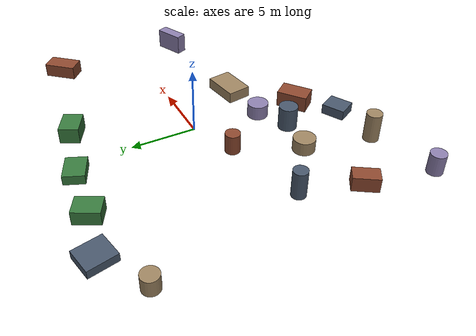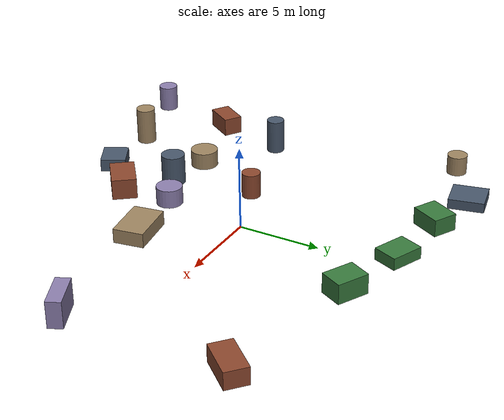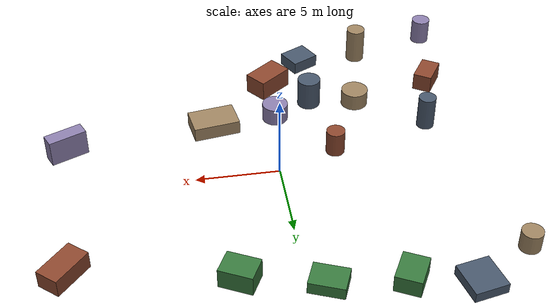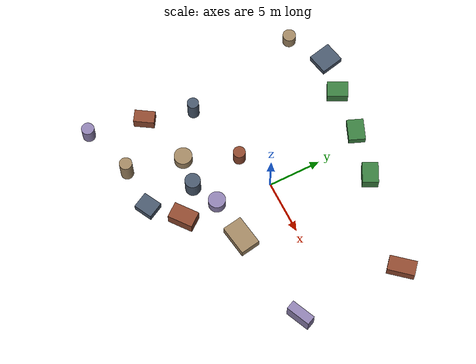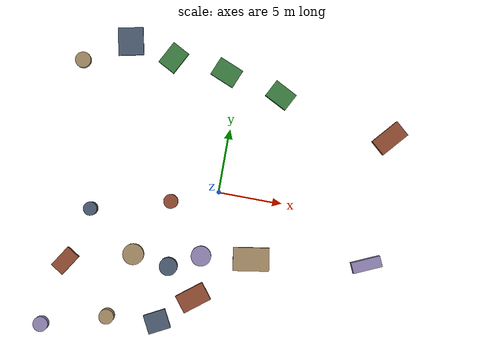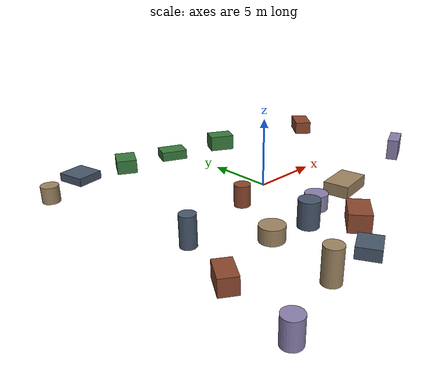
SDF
<sdf version="1.10">
 <world name="robotx_task1_uav_view">
  <gravity>0 0 -9.81</gravity>
  <physics name="physics" type="ode">
   <max_step_size>0.002</max_step_size>
   <real_time_factor>1.0</real_time_factor>
  </physics>
  <scene>
   <ambient>0.14 0.14 0.14 1.0</ambient>
   <background>0.32 0.32 0.38 1.0</background>
   <shadows>true</shadows>
   <grid>false</grid>
  </scene>
  <light name="sun" type="directional">
   <pose>0 0 300 0 0 0</pose>
   <diffuse>0.35 0.35 0.35 1.0</diffuse>
   <specular>0.12 0.12 0.12 1.0</specular>
   <direction>0.12 -0.05 -1.0</direction>
   <attenuation>
    <range>2500</range>
    <constant>0.85</constant>
    <linear>0.001</linear>
    <quadratic>0.00005</quadratic>
   </attenuation>
  </light>
  <plugin filename="gz-sim-physics-system" name="gz::sim::systems::Physics"/>
  <plugin filename="gz-sim-user-commands-system" name="gz::sim::systems::UserCommands"/>
  <plugin filename="gz-sim-scene-broadcaster-system" name="gz::sim::systems::SceneBroadcaster"/>
  <plugin filename="gz-sim-sensors-system" name="gz::sim::systems::Sensors">
   <render_engine>ogre2</render_engine>
  </plugin>
  <model name="scene_clutter_cyl_000">
   <static>true</static>
   <pose>-6.927 -11.063 1.168 0 0 -2.150327</pose>
   <link name="link">
    <visual name="v">
     <geometry><cylinder><radius>0.587</radius><length>2.236</length></cylinder></geometry>
     <material><ambient>0.45 0.38 0.32 1.0</ambient><diffuse>0.62 0.52 0.38 1.0</diffuse></material>
    </visual>
   </link>
  </model>
  <model name="scene_clutter_cyl_001">
   <static>true</static>
   <pose>-9.661 -3.001 1.096 0 0 -2.903725</pose>
   <link name="link">
    <visual name="v">
     <geometry><cylinder><radius>0.536</radius><length>2.092</length></cylinder></geometry>
     <material><ambient>0.18 0.22 0.28 1.0</ambient><diffuse>0.28 0.34 0.42 1.0</diffuse></material>
    </visual>
   </link>
  </model>
  <model name="scene_clutter_box_002">
   <static>true</static>
   <pose>-0.535 -8.480 0.649 0 0 -0.911209</pose>
   <link name="link">
    <visual name="v">
     <geometry><box><size>1.489 2.353 1.258</size></box></geometry>
     <material><ambient>0.35 0.16 0.12 1.0</ambient><diffuse>0.55 0.28 0.18 1.0</diffuse></material>
    </visual>
   </link>
  </model>
  <model name="scene_clutter_box_003">
   <static>true</static>
   <pose>3.436 8.354 0.623 0 0 1.094457</pose>
   <link name="link">
    <visual name="v">
     <geometry><box><size>1.471 1.949 1.206</size></box></geometry>
     <material><ambient>0.12 0.30 0.14 1.0</ambient><diffuse>0.22 0.48 0.24 1.0</diffuse></material>
    </visual>
   </link>
  </model>
  <model name="scene_clutter_cyl_004">
   <static>true</static>
   <pose>-11.917 -12.585 0.847 0 0 0.037778</pose>
   <link name="link">
    <visual name="v">
     <geometry><cylinder><radius>0.588</radius><length>1.593</length></cylinder></geometry>
     <material><ambient>0.40 0.35 0.50 1.0</ambient><diffuse>0.55 0.50 0.68 1.0</diffuse></material>
    </visual>
   </link>
  </model>
  <model name="scene_clutter_cyl_005">
   <static>true</static>
   <pose>-5.765 -5.956 0.565 0 0 1.758689</pose>
   <link name="link">
    <visual name="v">
     <geometry><cylinder><radius>0.833</radius><length>1.029</length></cylinder></geometry>
     <material><ambient>0.45 0.38 0.32 1.0</ambient><diffuse>0.62 0.52 0.38 1.0</diffuse></material>
    </visual>
   </link>
  </model>
  <model name="scene_clutter_box_006">
   <static>true</static>
   <pose>-3.003 -10.841 0.411 0 0 0.480234</pose>
   <link name="link">
    <visual name="v">
     <geometry><box><size>1.787 1.545 0.782</size></box></geometry>
     <material><ambient>0.18 0.22 0.28 1.0</ambient><diffuse>0.28 0.34 0.42 1.0</diffuse></material>
    </visual>
   </link>
  </model>
  <model name="scene_clutter_cyl_007">
   <static>true</static>
   <pose>-3.586 -1.341 0.815 0 0 2.703897</pose>
   <link name="link">
    <visual name="v">
     <geometry><cylinder><radius>0.565</radius><length>1.530</length></cylinder></geometry>
     <material><ambient>0.35 0.16 0.12 1.0</ambient><diffuse>0.55 0.28 0.18 1.0</diffuse></material>
    </visual>
   </link>
  </model>
  <model name="scene_clutter_box_008">
   <static>true</static>
   <pose>-5.352 9.770 0.539 0 0 -2.061630</pose>
   <link name="link">
    <visual name="v">
     <geometry><box><size>1.923 1.494 1.039</size></box></geometry>
     <material><ambient>0.12 0.30 0.14 1.0</ambient><diffuse>0.22 0.48 0.24 1.0</diffuse></material>
    </visual>
   </link>
  </model>
  <model name="scene_clutter_box_009">
   <static>true</static>
   <pose>12.366 -3.506 0.824 0 0 -2.722901</pose>
   <link name="link">
    <visual name="v">
     <geometry><box><size>2.319 0.864 1.609</size></box></geometry>
     <material><ambient>0.40 0.35 0.50 1.0</ambient><diffuse>0.55 0.50 0.68 1.0</diffuse></material>
    </visual>
   </link>
  </model>
  <model name="scene_clutter_cyl_010">
   <static>true</static>
   <pose>-12.316 8.364 0.643 0 0 0.469004</pose>
   <link name="link">
    <visual name="v">
     <geometry><cylinder><radius>0.614</radius><length>1.186</length></cylinder></geometry>
     <material><ambient>0.45 0.38 0.32 1.0</ambient><diffuse>0.62 0.52 0.38 1.0</diffuse></material>
    </visual>
   </link>
  </model>
  <model name="scene_clutter_box_011">
   <static>true</static>
   <pose>-8.909 10.469 0.324 0 0 -2.932710</pose>
   <link name="link">
    <visual name="v">
     <geometry><box><size>1.980 2.166 0.609</size></box></geometry>
     <material><ambient>0.18 0.22 0.28 1.0</ambient><diffuse>0.28 0.34 0.42 1.0</diffuse></material>
    </visual>
   </link>
  </model>
  <model name="scene_clutter_box_012">
   <static>true</static>
   <pose>-10.924 -7.391 0.577 0 0 -0.570057</pose>
   <link name="link">
    <visual name="v">
     <geometry><box><size>1.166 1.903 1.113</size></box></geometry>
     <material><ambient>0.35 0.16 0.12 1.0</ambient><diffuse>0.55 0.28 0.18 1.0</diffuse></material>
    </visual>
   </link>
  </model>
  <model name="scene_clutter_box_013">
   <static>true</static>
   <pose>-1.065 9.389 0.385 0 0 2.751395</pose>
   <link name="link">
    <visual name="v">
     <geometry><box><size>2.033 1.551 0.731</size></box></geometry>
     <material><ambient>0.12 0.30 0.14 1.0</ambient><diffuse>0.22 0.48 0.24 1.0</diffuse></material>
    </visual>
   </link>
  </model>
  <model name="scene_clutter_cyl_014">
   <static>true</static>
   <pose>-0.503 -5.158 0.603 0 0 -0.457020</pose>
   <link name="link">
    <visual name="v">
     <geometry><cylinder><radius>0.791</radius><length>1.106</length></cylinder></geometry>
     <material><ambient>0.40 0.35 0.50 1.0</ambient><diffuse>0.55 0.50 0.68 1.0</diffuse></material>
    </visual>
   </link>
  </model>
  <model name="scene_clutter_box_015">
   <static>true</static>
   <pose>3.410 -4.713 0.456 0 0 -2.986114</pose>
   <link name="link">
    <visual name="v">
     <geometry><box><size>2.842 1.844 0.872</size></box></geometry>
     <material><ambient>0.45 0.38 0.32 1.0</ambient><diffuse>0.62 0.52 0.38 1.0</diffuse></material>
    </visual>
   </link>
  </model>
  <model name="scene_clutter_cyl_016">
   <static>true</static>
   <pose>-2.874 -6.388 0.971 0 0 2.187927</pose>
   <link name="link">
    <visual name="v">
     <geometry><cylinder><radius>0.713</radius><length>1.843</length></cylinder></geometry>
     <material><ambient>0.18 0.22 0.28 1.0</ambient><diffuse>0.28 0.34 0.42 1.0</diffuse></material>
    </visual>
   </link>
  </model>
  <model name="scene_clutter_box_017">
   <static>true</static>
   <pose>12.456 6.565 0.545 0 0 0.856276</pose>
   <link name="link">
    <visual name="v">
     <geometry><box><size>2.505 1.379 1.050</size></box></geometry>
     <material><ambient>0.35 0.16 0.12 1.0</ambient><diffuse>0.55 0.28 0.18 1.0</diffuse></material>
    </visual>
   </link>
  </model>
  <model name="uav_dataset_camera">
   <static>false</static>
   <pose>0 0 26 0 0 0</pose>
   <plugin filename="librobotx_overhead_motion_plugin.dylib" name="robotx::OverheadMotionPlugin">
    <radius_x_m>10.18309</radius_x_m>
    <radius_y_m>9.10537</radius_y_m>
    <angular_speed_rad_s>0.084837</angular_speed_rad_s>
    <phase_rad>5.120910</phase_rad>
    <z_wobble_m>0.05578</z_wobble_m>
    <z_wobble_hz>0.03675</z_wobble_hz>
    <z_wobble_phase_rad>3.091940</z_wobble_phase_rad>
   </plugin>
   <link name="camera_link">
    <gravity>false</gravity>
    <sensor name="top_down_rgb" type="camera">
     <always_on>true</always_on>
     <update_rate>20</update_rate>
     <pose>0 0 0 0 1.57079632679 0</pose>
     <camera>
      <horizontal_fov>1.05</horizontal_fov>
      <image><width>1920</width><height>1080</height><format>R8G8B8</format></image>
      <clip><near>0.2</near><far>600</far></clip>
     </camera>
     <topic>/robotx/uav/camera/image_raw</topic>
     <visualize>true</visualize>
    </sensor>
   </link>
  </model>
 </world>
</sdf>
